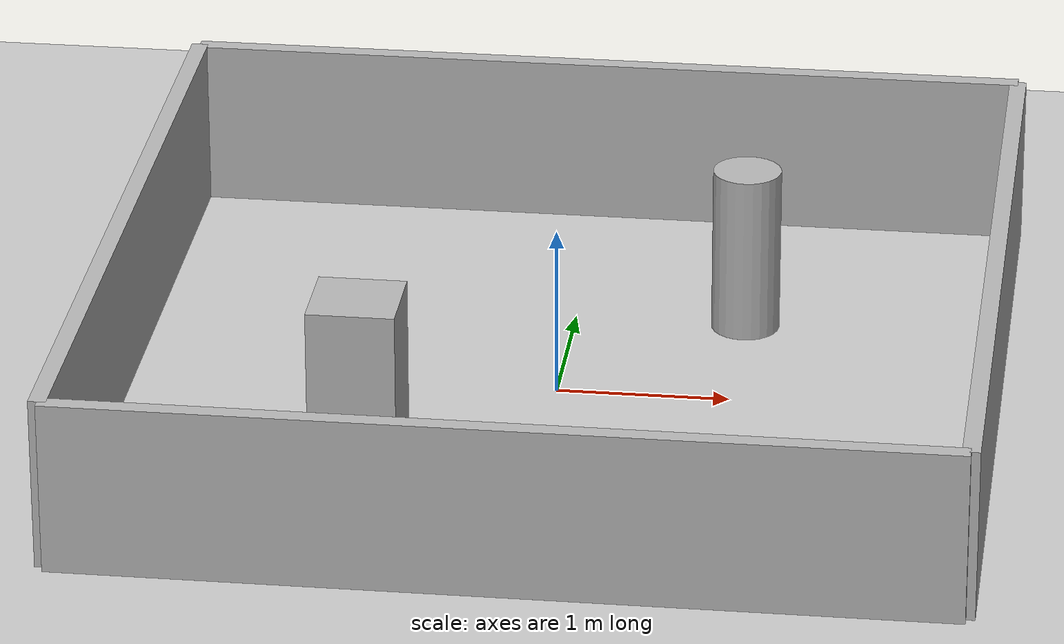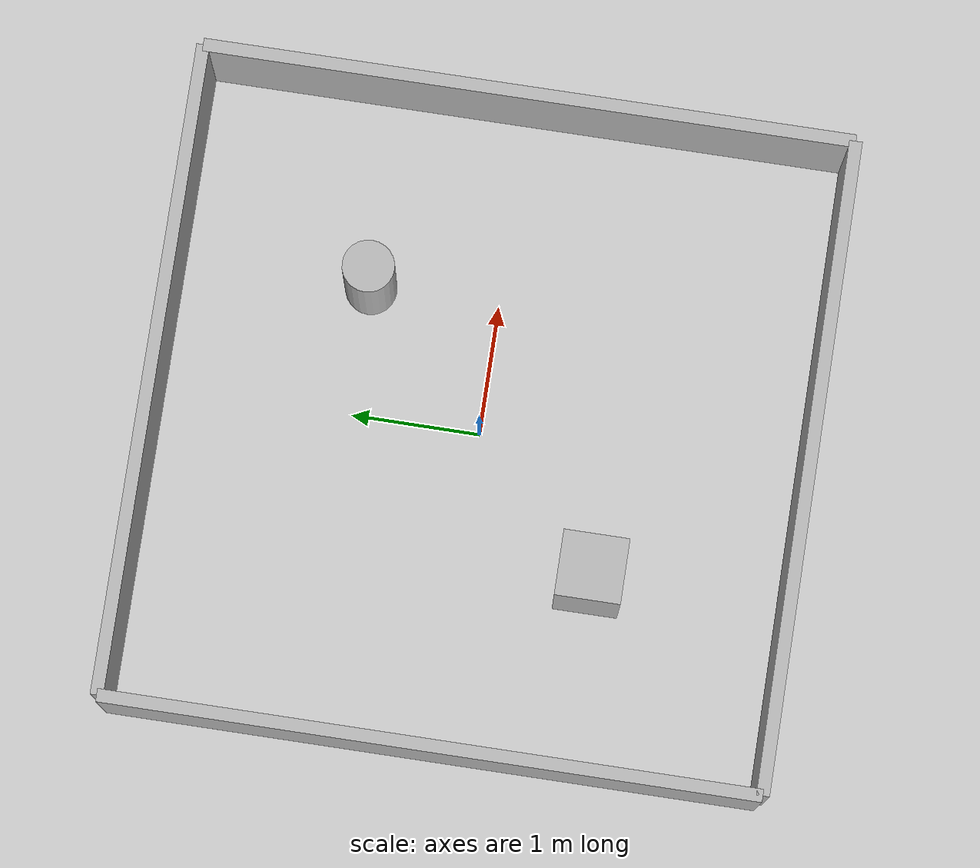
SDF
<?xml version="1.0" ?>
<sdf version="1.6">
  <world name="rl_training_world">
    <include>
      <uri>model://sun</uri>
    </include>
    <include>
      <uri>model://ground_plane</uri>
    </include>

    <!-- Outer walls (5m x 5m arena) -->
    <model name="outer_walls">
      <static>true</static>
      <link name="wall_1">
        <pose>2.5 0 0.5 0 0 0</pose>
        <collision name="c1"><geometry><box><size>0.1 5.0 1</size></box></geometry></collision>
        <visual name="v1"><geometry><box><size>0.1 5.0 1</size></box></geometry></visual>
      </link>
      <link name="wall_2">
        <pose>-2.5 0 0.5 0 0 0</pose>
        <collision name="c2"><geometry><box><size>0.1 5.0 1</size></box></geometry></collision>
        <visual name="v2"><geometry><box><size>0.1 5.0 1</size></box></geometry></visual>
      </link>
      <link name="wall_3">
        <pose>0 2.5 0.5 0 0 0</pose>
        <collision name="c3"><geometry><box><size>5.0 0.1 1</size></box></geometry></collision>
        <visual name="v3"><geometry><box><size>5.0 0.1 1</size></box></geometry></visual>
      </link>
      <link name="wall_4">
        <pose>0 -2.5 0.5 0 0 0</pose>
        <collision name="c4"><geometry><box><size>5.0 0.1 1</size></box></geometry></collision>
        <visual name="v4"><geometry><box><size>5.0 0.1 1</size></box></geometry></visual>
      </link>
    </model>

    <!-- Internal static obstacles -->
    <model name="obstacle_1">
      <static>true</static>
      <pose>1 1 0.5 0 0 0</pose>
      <link name="link">
        <collision name="c"><geometry><cylinder><radius>0.2</radius><length>1</length></cylinder></geometry></collision>
        <visual name="v"><geometry><cylinder><radius>0.2</radius><length>1</length></cylinder></geometry></visual>
      </link>
    </model>
    <model name="obstacle_2">
      <static>true</static>
      <pose>-1 -1 0.5 0 0 0</pose>
      <link name="link">
        <collision name="c"><geometry><box><size>0.5 0.5 1</size></box></geometry></collision>
        <visual name="v"><geometry><box><size>0.5 0.5 1</size></box></geometry></visual>
      </link>
    </model>
  </world>
</sdf>
